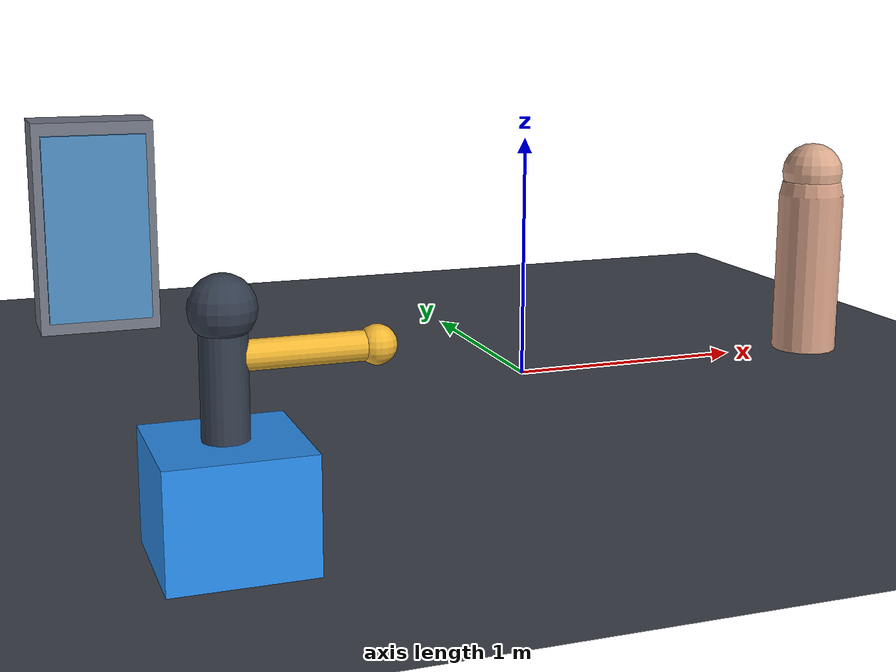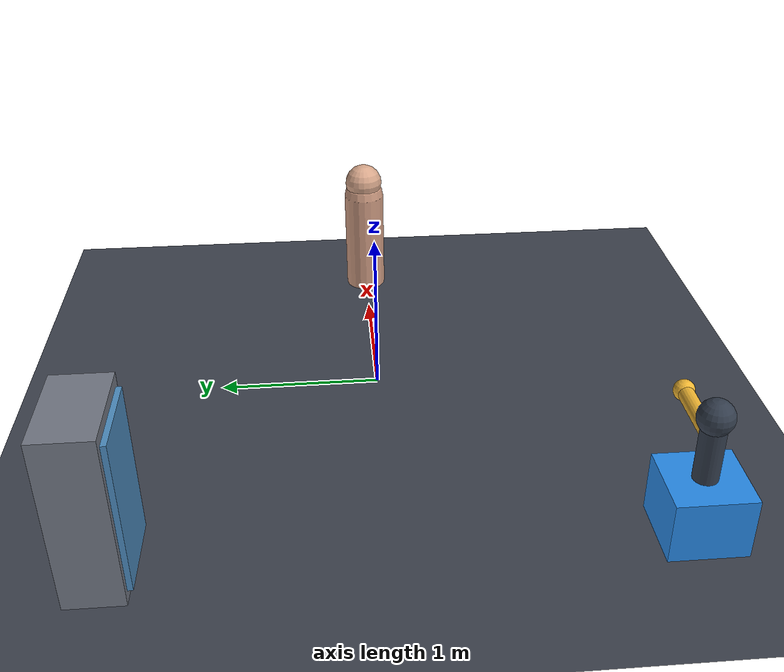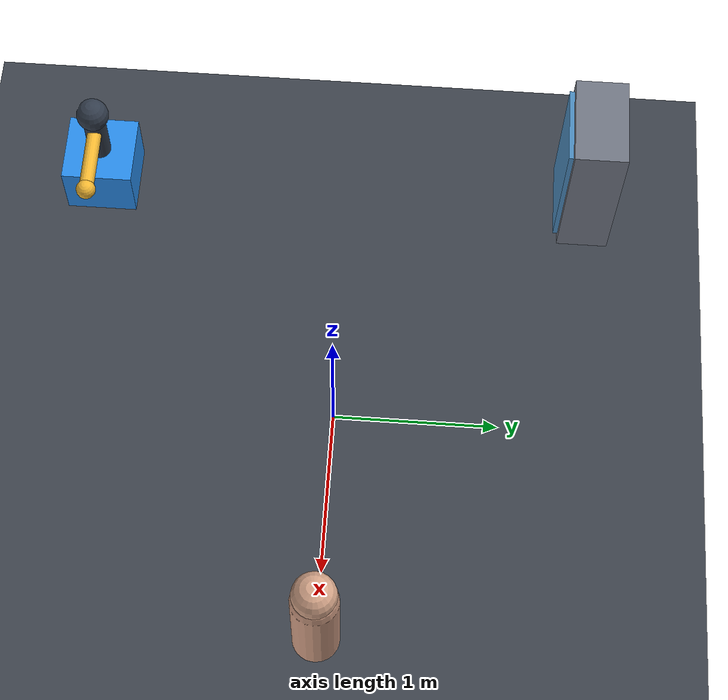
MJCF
<mujoco model="home_care">
  <option gravity="0 0 -9.81" timestep="0.01"/>
  <visual>
    <global offwidth="960" offheight="540"/>
    <quality shadowsize="2048"/>
  </visual>
  <asset>
    <texture name="sky" type="skybox" builtin="gradient" rgb1="0.5 0.6 0.7" rgb2="0.1 0.12 0.16" width="256" height="256"/>
    <texture name="grid" type="2d" builtin="checker" rgb1="0.28 0.30 0.34" rgb2="0.20 0.22 0.26" width="512" height="512"/>
    <material name="floor" texture="grid" texrepeat="6 6" reflectance="0.05"/>
  </asset>
  <worldbody>
    <light pos="0 0 4" dir="0 0 -1" diffuse="0.9 0.9 0.9" specular="0.2 0.2 0.2"/>
    <light pos="-2 -2 3" dir="1 1 -1" diffuse="0.4 0.4 0.4"/>
    <geom name="floor" type="plane" size="4 4 0.1" material="floor"/>
    <camera name="cam" pos="0 -4.2 2.6" xyaxes="1 0 0 0 0.6 0.8"/>

    <!-- patient (lies down when fallen; we set qpos to pose the body) -->
    <body name="patient" pos="1.4 0.0 0.35">
      <joint name="p_fall" type="hinge" axis="0 1 0" pos="0 0 -0.35" range="0 1.6"/>
      <geom type="capsule" fromto="0 0 -0.35 0 0 0.35" size="0.14" rgba="0.82 0.62 0.52 1"/>
      <geom type="sphere" pos="0 0 0.45" size="0.13" rgba="0.85 0.66 0.55 1"/>
    </body>

    <!-- medication cabinet -->
    <body name="cabinet" pos="-1.6 1.5 0.5">
      <geom type="box" size="0.28 0.16 0.5" rgba="0.45 0.47 0.52 1"/>
      <geom type="box" pos="0 -0.17 0" size="0.24 0.02 0.44" rgba="0.30 0.55 0.75 1"/>
    </body>

    <!-- robot: mobile base (x,y slides) + a lift arm -->
    <body name="robot" pos="-1.6 -1.6 0.18">
      <joint name="bx" type="slide" axis="1 0 0" range="-4 4"/>
      <joint name="by" type="slide" axis="0 1 0" range="-4 4"/>
      <geom name="base" type="box" size="0.22 0.22 0.18" rgba="0.16 0.55 0.92 1"/>
      <geom type="cylinder" fromto="0 0 0.18 0 0 0.5" size="0.07" rgba="0.20 0.24 0.30 1"/>
      <geom type="sphere" pos="0 0 0.56" size="0.10" rgba="0.20 0.24 0.30 1"/>
      <body name="arm" pos="0.0 0 0.42">
        <joint name="arm_lift" type="hinge" axis="0 1 0" range="-1.7 1.7"/>
        <geom type="capsule" fromto="0 0 0 0.45 0 0" size="0.045" rgba="0.95 0.72 0.20 1"/>
        <geom type="sphere" pos="0.45 0 0" size="0.06" rgba="0.95 0.72 0.20 1"/>
      </body>
    </body>
  </worldbody>
</mujoco>
